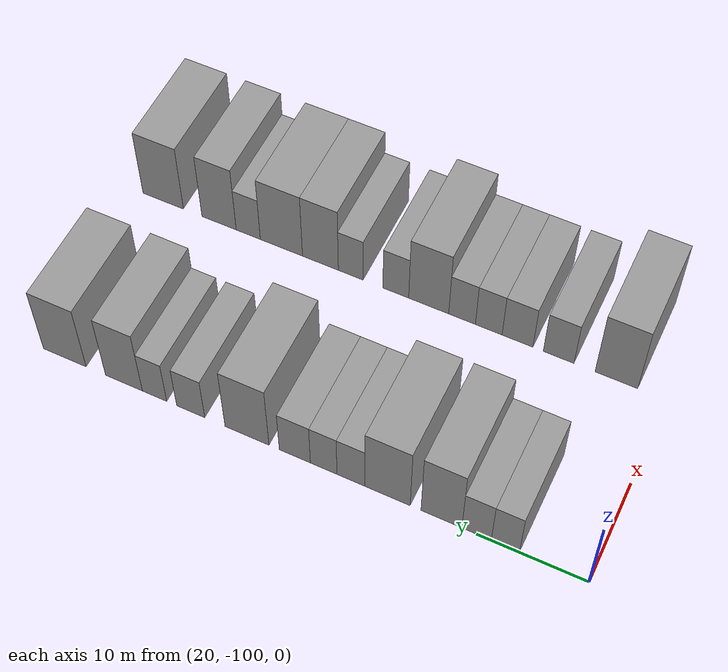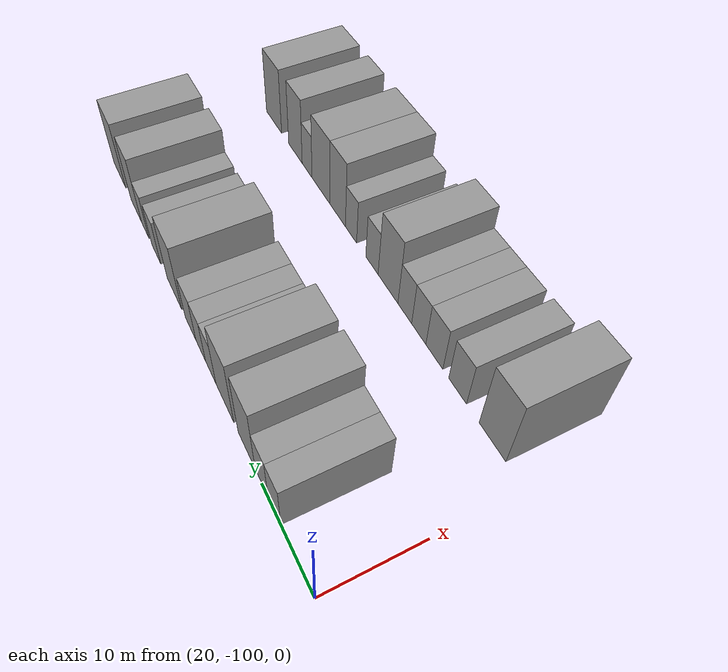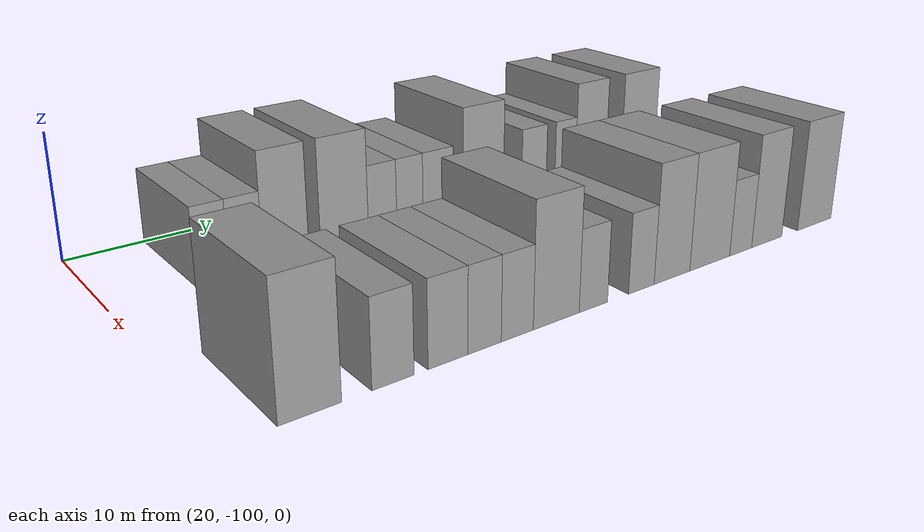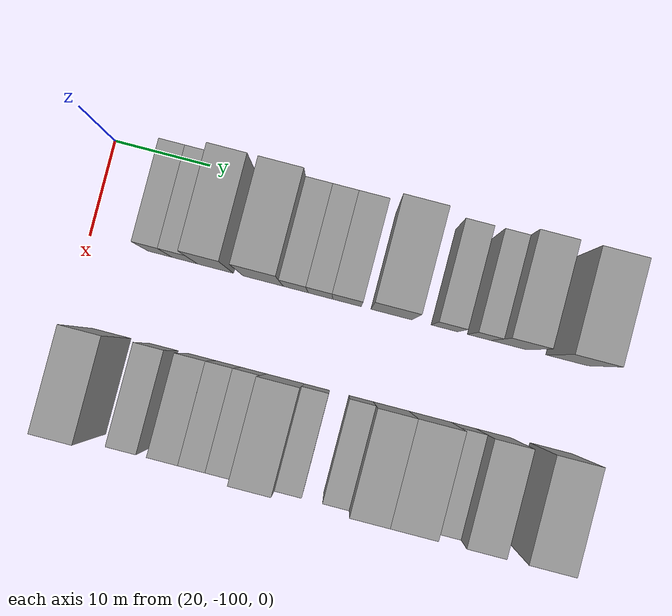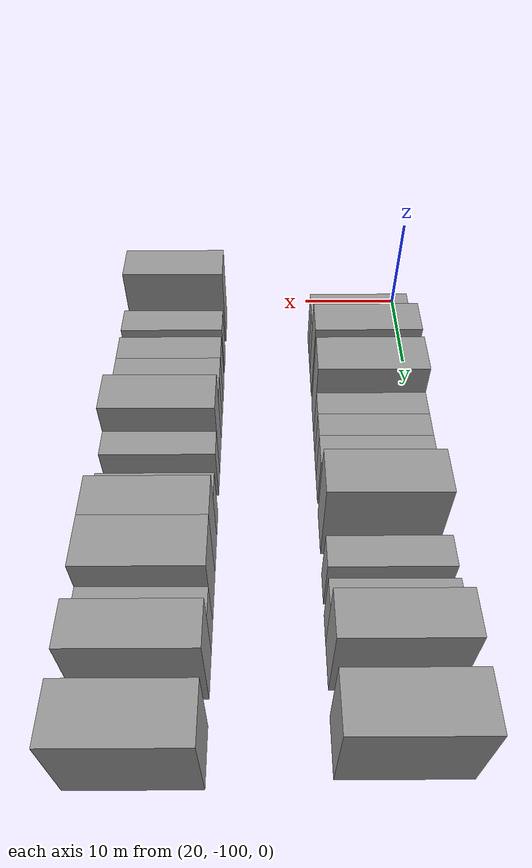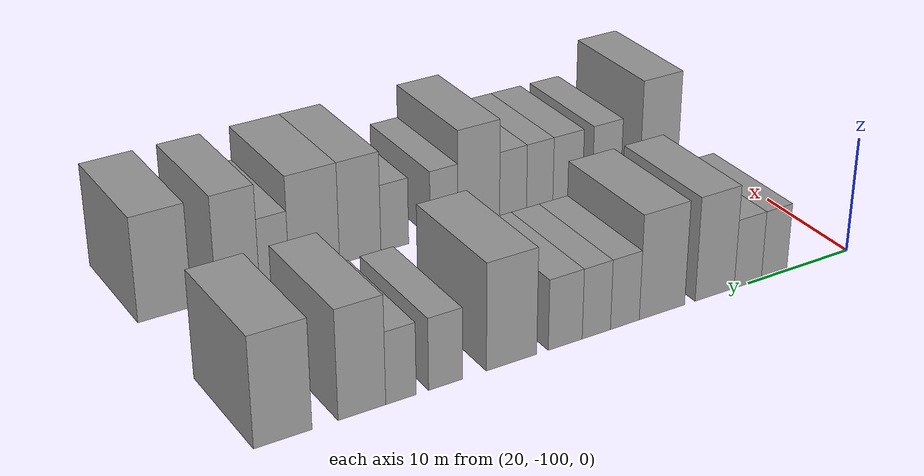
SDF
<sdf version="1.6">
 <world name="default">
  <model name="building_27">
   <static>1</static>
   <pose>25.0000 -92.5703 0 0.000000 0.000000 0.000000</pose>
   <link name="link">
    <pose>0 0 3.00 0 0 0</pose>
    <collision name="collision"><geometry><box><size>10.0000 2.5311 6.0000</size></box></geometry></collision>
    <visual name="visual">
     <cast_shadows>0</cast_shadows>
     <geometry><box><size>10.0000 2.5311 6.0000</size></box></geometry>
     <material>
      <script>
       <uri>model://grey_wall/materials/scripts</uri>
       <uri>model://grey_wall/materials/textures</uri>
       <name>vrc/grey_wall</name>
      </script>
     </material>
    </visual>
   </link>
  </model>
  <model name="building_28">
   <static>1</static>
   <pose>25.0000 -89.9703 0 0.000000 0.000000 0.000000</pose>
   <link name="link">
    <pose>0 0 3.00 0 0 0</pose>
    <collision name="collision"><geometry><box><size>10.0000 2.6690 6.0000</size></box></geometry></collision>
    <visual name="visual">
     <cast_shadows>0</cast_shadows>
     <geometry><box><size>10.0000 2.6690 6.0000</size></box></geometry>
     <material>
      <script>
       <uri>model://grey_wall/materials/scripts</uri>
       <uri>model://grey_wall/materials/textures</uri>
       <name>vrc/grey_wall</name>
      </script>
     </material>
    </visual>
   </link>
  </model>
  <model name="building_29">
   <static>1</static>
   <pose>25.0000 -86.7608 0 0.000000 0.000000 0.000000</pose>
   <link name="link">
    <pose>0 0 4.50 0 0 0</pose>
    <collision name="collision"><geometry><box><size>10.0000 3.7500 9.0000</size></box></geometry></collision>
    <visual name="visual">
     <cast_shadows>0</cast_shadows>
     <geometry><box><size>10.0000 3.7500 9.0000</size></box></geometry>
     <material>
      <script>
       <uri>model://grey_wall/materials/scripts</uri>
       <uri>model://grey_wall/materials/textures</uri>
       <name>vrc/grey_wall</name>
      </script>
     </material>
    </visual>
   </link>
  </model>
  <model name="building_30">
   <static>1</static>
   <pose>25.0000 -81.7724 0 0.000000 0.000000 0.000000</pose>
   <link name="link">
    <pose>0 0 4.50 0 0 0</pose>
    <collision name="collision"><geometry><box><size>10.0000 4.2270 9.0000</size></box></geometry></collision>
    <visual name="visual">
     <cast_shadows>0</cast_shadows>
     <geometry><box><size>10.0000 4.2270 9.0000</size></box></geometry>
     <material>
      <script>
       <uri>model://grey_wall/materials/scripts</uri>
       <uri>model://grey_wall/materials/textures</uri>
       <name>vrc/grey_wall</name>
      </script>
     </material>
    </visual>
   </link>
  </model>
  <model name="building_31">
   <static>1</static>
   <pose>25.0000 -78.3434 0 0.000000 0.000000 0.000000</pose>
   <link name="link">
    <pose>0 0 3.00 0 0 0</pose>
    <collision name="collision"><geometry><box><size>10.0000 2.6310 6.0000</size></box></geometry></collision>
    <visual name="visual">
     <cast_shadows>0</cast_shadows>
     <geometry><box><size>10.0000 2.6310 6.0000</size></box></geometry>
     <material>
      <script>
       <uri>model://grey_wall/materials/scripts</uri>
       <uri>model://grey_wall/materials/textures</uri>
       <name>vrc/grey_wall</name>
      </script>
     </material>
    </visual>
   </link>
  </model>
  <model name="building_32">
   <static>1</static>
   <pose>25.0000 -75.7608 0 0.000000 0.000000 0.000000</pose>
   <link name="link">
    <pose>0 0 3.00 0 0 0</pose>
    <collision name="collision"><geometry><box><size>10.0000 2.5341 6.0000</size></box></geometry></collision>
    <visual name="visual">
     <cast_shadows>0</cast_shadows>
     <geometry><box><size>10.0000 2.5341 6.0000</size></box></geometry>
     <material>
      <script>
       <uri>model://grey_wall/materials/scripts</uri>
       <uri>model://grey_wall/materials/textures</uri>
       <name>vrc/grey_wall</name>
      </script>
     </material>
    </visual>
   </link>
  </model>
  <model name="building_33">
   <static>1</static>
   <pose>25.0000 -72.9975 0 0.000000 0.000000 0.000000</pose>
   <link name="link">
    <pose>0 0 3.00 0 0 0</pose>
    <collision name="collision"><geometry><box><size>10.0000 2.9925 6.0000</size></box></geometry></collision>
    <visual name="visual">
     <cast_shadows>0</cast_shadows>
     <geometry><box><size>10.0000 2.9925 6.0000</size></box></geometry>
     <material>
      <script>
       <uri>model://grey_wall/materials/scripts</uri>
       <uri>model://grey_wall/materials/textures</uri>
       <name>vrc/grey_wall</name>
      </script>
     </material>
    </visual>
   </link>
  </model>
  <model name="building_34">
   <static>1</static>
   <pose>25.0000 -68.3537 0 0.000000 0.000000 0.000000</pose>
   <link name="link">
    <pose>0 0 4.50 0 0 0</pose>
    <collision name="collision"><geometry><box><size>10.0000 4.2952 9.0000</size></box></geometry></collision>
    <visual name="visual">
     <cast_shadows>0</cast_shadows>
     <geometry><box><size>10.0000 4.2952 9.0000</size></box></geometry>
     <material>
      <script>
       <uri>model://grey_wall/materials/scripts</uri>
       <uri>model://grey_wall/materials/textures</uri>
       <name>vrc/grey_wall</name>
      </script>
     </material>
    </visual>
   </link>
  </model>
  <model name="building_35">
   <static>1</static>
   <pose>25.0000 -62.8102 0 0.000000 0.000000 0.000000</pose>
   <link name="link">
    <pose>0 0 3.00 0 0 0</pose>
    <collision name="collision"><geometry><box><size>10.0000 2.7916 6.0000</size></box></geometry></collision>
    <visual name="visual">
     <cast_shadows>0</cast_shadows>
     <geometry><box><size>10.0000 2.7916 6.0000</size></box></geometry>
     <material>
      <script>
       <uri>model://grey_wall/materials/scripts</uri>
       <uri>model://grey_wall/materials/textures</uri>
       <name>vrc/grey_wall</name>
      </script>
     </material>
    </visual>
   </link>
  </model>
  <model name="building_36">
   <static>1</static>
   <pose>25.0000 -59.1891 0 0.000000 0.000000 0.000000</pose>
   <link name="link">
    <pose>0 0 3.00 0 0 0</pose>
    <collision name="collision"><geometry><box><size>10.0000 2.4505 6.0000</size></box></geometry></collision>
    <visual name="visual">
     <cast_shadows>0</cast_shadows>
     <geometry><box><size>10.0000 2.4505 6.0000</size></box></geometry>
     <material>
      <script>
       <uri>model://grey_wall/materials/scripts</uri>
       <uri>model://grey_wall/materials/textures</uri>
       <name>vrc/grey_wall</name>
      </script>
     </material>
    </visual>
   </link>
  </model>
  <model name="building_37">
   <static>1</static>
   <pose>25.0000 -56.0891 0 0.000000 0.000000 0.000000</pose>
   <link name="link">
    <pose>0 0 4.50 0 0 0</pose>
    <collision name="collision"><geometry><box><size>10.0000 3.7496 9.0000</size></box></geometry></collision>
    <visual name="visual">
     <cast_shadows>0</cast_shadows>
     <geometry><box><size>10.0000 3.7496 9.0000</size></box></geometry>
     <material>
      <script>
       <uri>model://grey_wall/materials/scripts</uri>
       <uri>model://grey_wall/materials/textures</uri>
       <name>vrc/grey_wall</name>
      </script>
     </material>
    </visual>
   </link>
  </model>
  <model name="building_38">
   <static>1</static>
   <pose>25.0000 -50.0025 0 0.000000 0.000000 0.000000</pose>
   <link name="link">
    <pose>0 0 4.50 0 0 0</pose>
    <collision name="collision"><geometry><box><size>10.0000 4.4235 9.0000</size></box></geometry></collision>
    <visual name="visual">
     <cast_shadows>0</cast_shadows>
     <geometry><box><size>10.0000 4.4235 9.0000</size></box></geometry>
     <material>
      <script>
       <uri>model://grey_wall/materials/scripts</uri>
       <uri>model://grey_wall/materials/textures</uri>
       <name>vrc/grey_wall</name>
      </script>
     </material>
    </visual>
   </link>
  </model>
  <model name="building_124">
   <static>1</static>
   <pose>44.0000 -95.2581 0 0.000000 0.000000 0.000000</pose>
   <link name="link">
    <pose>0 0 4.50 0 0 0</pose>
    <collision name="collision"><geometry><box><size>10.0000 4.0286 9.0000</size></box></geometry></collision>
    <visual name="visual">
     <cast_shadows>0</cast_shadows>
     <geometry><box><size>10.0000 4.0286 9.0000</size></box></geometry>
     <material>
      <script>
       <uri>model://grey_wall/materials/scripts</uri>
       <uri>model://grey_wall/materials/textures</uri>
       <name>vrc/grey_wall</name>
      </script>
     </material>
    </visual>
   </link>
  </model>
  <model name="building_125">
   <static>1</static>
   <pose>44.0000 -89.7716 0 0.000000 0.000000 0.000000</pose>
   <link name="link">
    <pose>0 0 3.00 0 0 0</pose>
    <collision name="collision"><geometry><box><size>10.0000 2.9444 6.0000</size></box></geometry></collision>
    <visual name="visual">
     <cast_shadows>0</cast_shadows>
     <geometry><box><size>10.0000 2.9444 6.0000</size></box></geometry>
     <material>
      <script>
       <uri>model://grey_wall/materials/scripts</uri>
       <uri>model://grey_wall/materials/textures</uri>
       <name>vrc/grey_wall</name>
      </script>
     </material>
    </visual>
   </link>
  </model>
  <model name="building_126">
   <static>1</static>
   <pose>44.0000 -85.8029 0 0.000000 0.000000 0.000000</pose>
   <link name="link">
    <pose>0 0 3.00 0 0 0</pose>
    <collision name="collision"><geometry><box><size>10.0000 2.9929 6.0000</size></box></geometry></collision>
    <visual name="visual">
     <cast_shadows>0</cast_shadows>
     <geometry><box><size>10.0000 2.9929 6.0000</size></box></geometry>
     <material>
      <script>
       <uri>model://grey_wall/materials/scripts</uri>
       <uri>model://grey_wall/materials/textures</uri>
       <name>vrc/grey_wall</name>
      </script>
     </material>
    </visual>
   </link>
  </model>
  <model name="building_127">
   <static>1</static>
   <pose>44.0000 -82.9965 0 0.000000 0.000000 0.000000</pose>
   <link name="link">
    <pose>0 0 3.00 0 0 0</pose>
    <collision name="collision"><geometry><box><size>10.0000 2.6198 6.0000</size></box></geometry></collision>
    <visual name="visual">
     <cast_shadows>0</cast_shadows>
     <geometry><box><size>10.0000 2.6198 6.0000</size></box></geometry>
     <material>
      <script>
       <uri>model://grey_wall/materials/scripts</uri>
       <uri>model://grey_wall/materials/textures</uri>
       <name>vrc/grey_wall</name>
      </script>
     </material>
    </visual>
   </link>
  </model>
  <model name="building_128">
   <static>1</static>
   <pose>44.0000 -80.3696 0 0.000000 0.000000 0.000000</pose>
   <link name="link">
    <pose>0 0 3.00 0 0 0</pose>
    <collision name="collision"><geometry><box><size>10.0000 2.6341 6.0000</size></box></geometry></collision>
    <visual name="visual">
     <cast_shadows>0</cast_shadows>
     <geometry><box><size>10.0000 2.6341 6.0000</size></box></geometry>
     <material>
      <script>
       <uri>model://grey_wall/materials/scripts</uri>
       <uri>model://grey_wall/materials/textures</uri>
       <name>vrc/grey_wall</name>
      </script>
     </material>
    </visual>
   </link>
  </model>
  <model name="building_129">
   <static>1</static>
   <pose>44.0000 -77.0538 0 0.000000 0.000000 0.000000</pose>
   <link name="link">
    <pose>0 0 4.50 0 0 0</pose>
    <collision name="collision"><geometry><box><size>10.0000 3.9975 9.0000</size></box></geometry></collision>
    <visual name="visual">
     <cast_shadows>0</cast_shadows>
     <geometry><box><size>10.0000 3.9975 9.0000</size></box></geometry>
     <material>
      <script>
       <uri>model://grey_wall/materials/scripts</uri>
       <uri>model://grey_wall/materials/textures</uri>
       <name>vrc/grey_wall</name>
      </script>
     </material>
    </visual>
   </link>
  </model>
  <model name="building_130">
   <static>1</static>
   <pose>44.0000 -73.7521 0 0.000000 0.000000 0.000000</pose>
   <link name="link">
    <pose>0 0 3.00 0 0 0</pose>
    <collision name="collision"><geometry><box><size>10.0000 2.6060 6.0000</size></box></geometry></collision>
    <visual name="visual">
     <cast_shadows>0</cast_shadows>
     <geometry><box><size>10.0000 2.6060 6.0000</size></box></geometry>
     <material>
      <script>
       <uri>model://grey_wall/materials/scripts</uri>
       <uri>model://grey_wall/materials/textures</uri>
       <name>vrc/grey_wall</name>
      </script>
     </material>
    </visual>
   </link>
  </model>
  <model name="building_131">
   <static>1</static>
   <pose>44.0000 -69.1797 0 0.000000 0.000000 0.000000</pose>
   <link name="link">
    <pose>0 0 3.00 0 0 0</pose>
    <collision name="collision"><geometry><box><size>10.0000 2.5388 6.0000</size></box></geometry></collision>
    <visual name="visual">
     <cast_shadows>0</cast_shadows>
     <geometry><box><size>10.0000 2.5388 6.0000</size></box></geometry>
     <material>
      <script>
       <uri>model://grey_wall/materials/scripts</uri>
       <uri>model://grey_wall/materials/textures</uri>
       <name>vrc/grey_wall</name>
      </script>
     </material>
    </visual>
   </link>
  </model>
  <model name="building_132">
   <static>1</static>
   <pose>44.0000 -66.0544 0 0.000000 0.000000 0.000000</pose>
   <link name="link">
    <pose>0 0 4.50 0 0 0</pose>
    <collision name="collision"><geometry><box><size>10.0000 3.7118 9.0000</size></box></geometry></collision>
    <visual name="visual">
     <cast_shadows>0</cast_shadows>
     <geometry><box><size>10.0000 3.7118 9.0000</size></box></geometry>
     <material>
      <script>
       <uri>model://grey_wall/materials/scripts</uri>
       <uri>model://grey_wall/materials/textures</uri>
       <name>vrc/grey_wall</name>
      </script>
     </material>
    </visual>
   </link>
  </model>
  <model name="building_133">
   <static>1</static>
   <pose>44.0000 -61.9923 0 0.000000 0.000000 0.000000</pose>
   <link name="link">
    <pose>0 0 4.50 0 0 0</pose>
    <collision name="collision"><geometry><box><size>10.0000 4.4124 9.0000</size></box></geometry></collision>
    <visual name="visual">
     <cast_shadows>0</cast_shadows>
     <geometry><box><size>10.0000 4.4124 9.0000</size></box></geometry>
     <material>
      <script>
       <uri>model://grey_wall/materials/scripts</uri>
       <uri>model://grey_wall/materials/textures</uri>
       <name>vrc/grey_wall</name>
      </script>
     </material>
    </visual>
   </link>
  </model>
  <model name="building_134">
   <static>1</static>
   <pose>44.0000 -58.5076 0 0.000000 0.000000 0.000000</pose>
   <link name="link">
    <pose>0 0 3.00 0 0 0</pose>
    <collision name="collision"><geometry><box><size>10.0000 2.5570 6.0000</size></box></geometry></collision>
    <visual name="visual">
     <cast_shadows>0</cast_shadows>
     <geometry><box><size>10.0000 2.5570 6.0000</size></box></geometry>
     <material>
      <script>
       <uri>model://grey_wall/materials/scripts</uri>
       <uri>model://grey_wall/materials/textures</uri>
       <name>vrc/grey_wall</name>
      </script>
     </material>
    </visual>
   </link>
  </model>
  <model name="building_135">
   <static>1</static>
   <pose>44.0000 -55.3981 0 0.000000 0.000000 0.000000</pose>
   <link name="link">
    <pose>0 0 4.50 0 0 0</pose>
    <collision name="collision"><geometry><box><size>10.0000 3.6620 9.0000</size></box></geometry></collision>
    <visual name="visual">
     <cast_shadows>0</cast_shadows>
     <geometry><box><size>10.0000 3.6620 9.0000</size></box></geometry>
     <material>
      <script>
       <uri>model://grey_wall/materials/scripts</uri>
       <uri>model://grey_wall/materials/textures</uri>
       <name>vrc/grey_wall</name>
      </script>
     </material>
    </visual>
   </link>
  </model>
  <model name="building_136">
   <static>1</static>
   <pose>44.0000 -49.3692 0 0.000000 0.000000 0.000000</pose>
   <link name="link">
    <pose>0 0 4.50 0 0 0</pose>
    <collision name="collision"><geometry><box><size>10.0000 4.3958 9.0000</size></box></geometry></collision>
    <visual name="visual">
     <cast_shadows>0</cast_shadows>
     <geometry><box><size>10.0000 4.3958 9.0000</size></box></geometry>
     <material>
      <script>
       <uri>model://grey_wall/materials/scripts</uri>
       <uri>model://grey_wall/materials/textures</uri>
       <name>vrc/grey_wall</name>
      </script>
     </material>
    </visual>
   </link>
  </model>
 </world>
</sdf>
